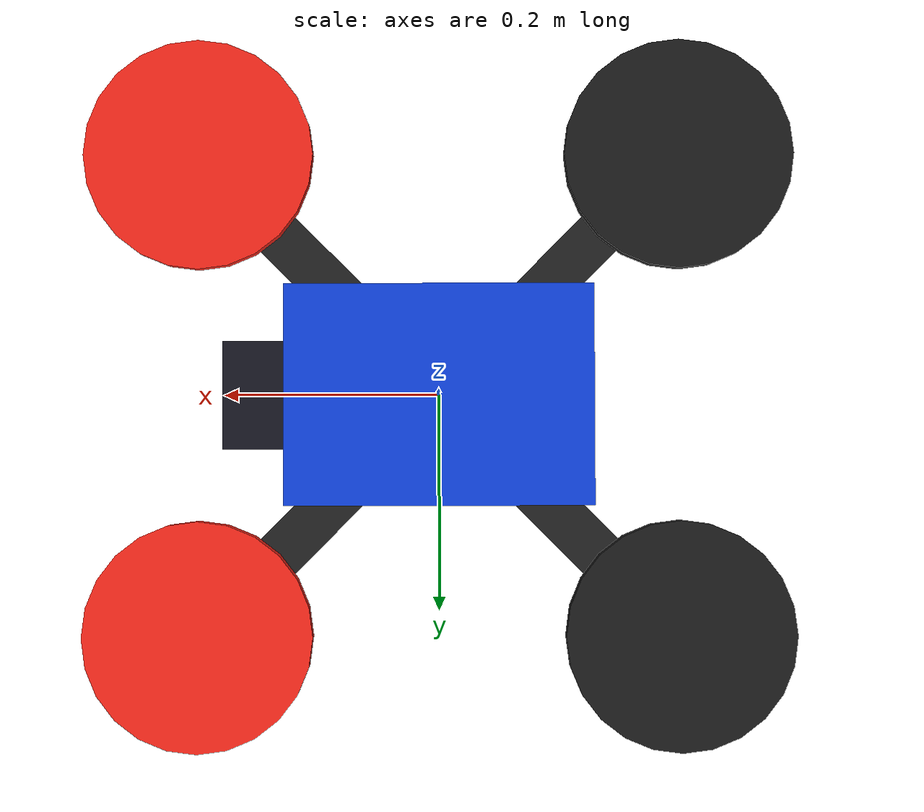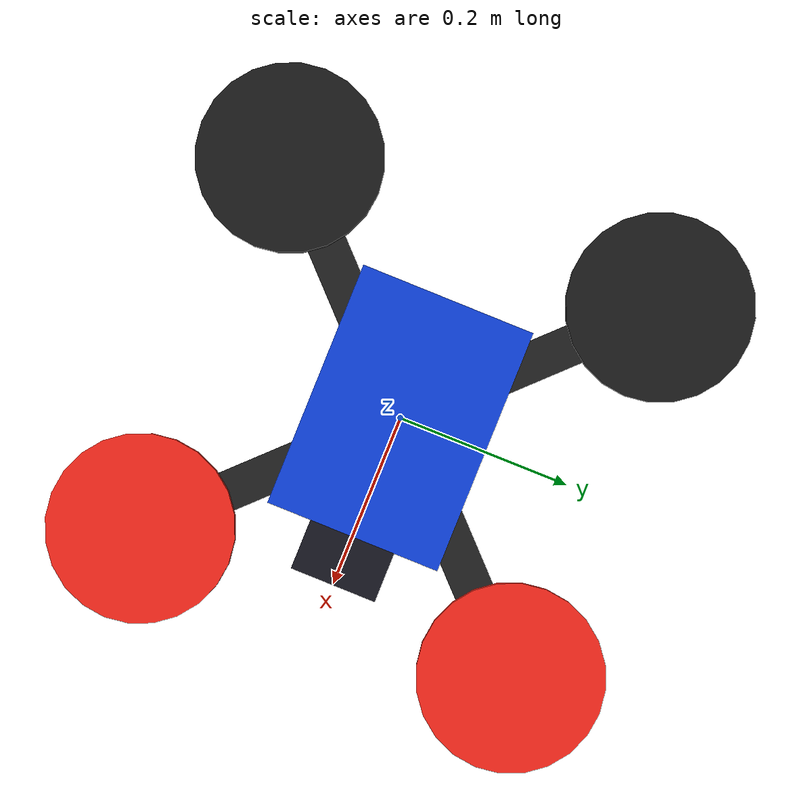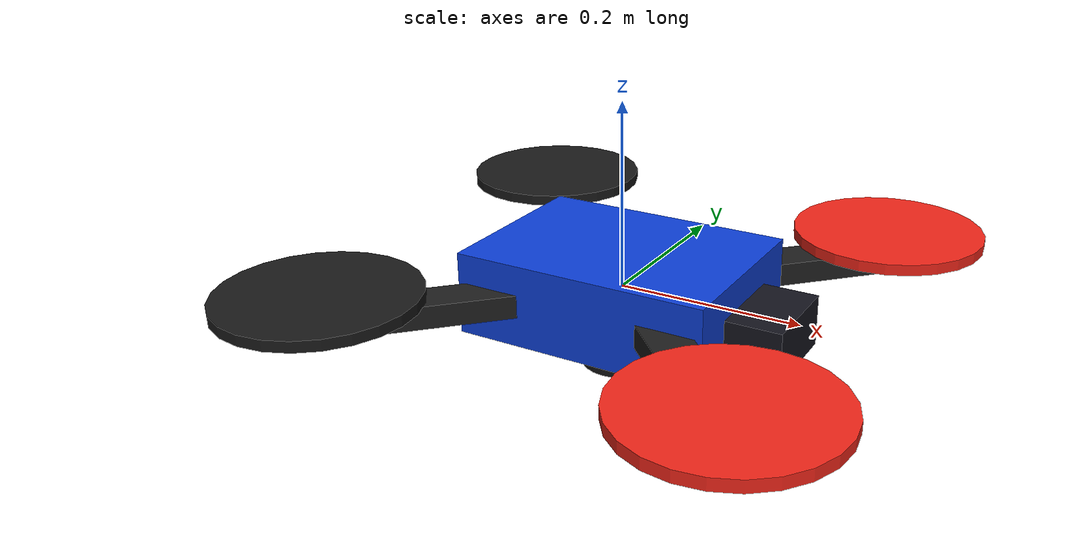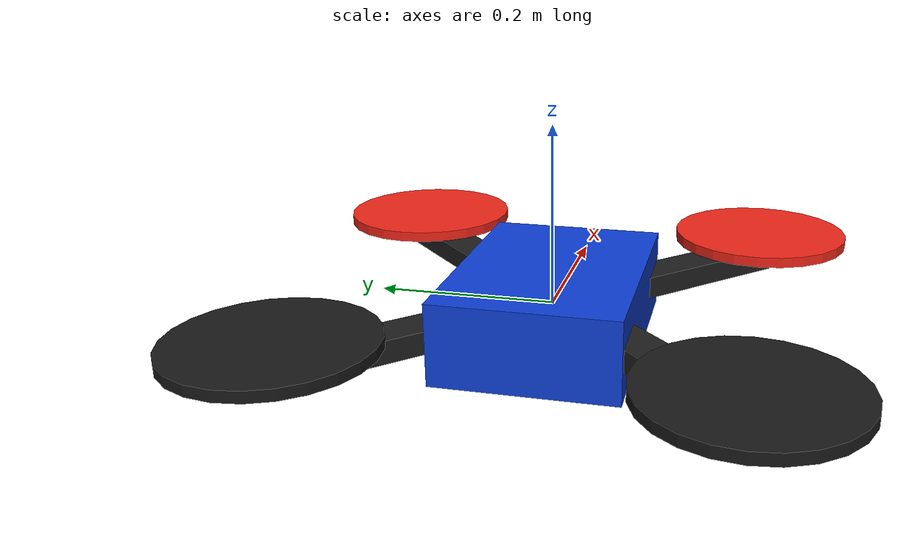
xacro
<?xml version="1.0"?>
<robot name="drone" xmlns:xacro="http://www.ros.org/wiki/xacro">
    <xacro:property name="arm_length" value="0.62" />
    <xacro:property name="arm_width" value="0.045" />
    <xacro:property name="arm_height" value="0.025" />
    <xacro:property name="rotor_radius" value="0.105" />

    <!-- 水平视场：640 / (2*tan(HFOV/2)) = 381.36，与算法侧写死的 fx 对齐 -->
    <xacro:property name="camera_hfov" value="1.3962634" />
    <xacro:property name="camera_width" value="640" />
    <xacro:property name="camera_height" value="480" />

    <link name="robot1/base_link">
        <visual name="body">
            <geometry><box size="0.28 0.20 0.09" /></geometry>
            <material name="drone_blue"><color rgba="0.05 0.25 0.85 1" /></material>
        </visual>
        <visual name="arm_x">
            <origin rpy="0 0 0.7854" />
            <geometry><box size="${arm_length} ${arm_width} ${arm_height}" /></geometry>
            <material name="arm_dark"><color rgba="0.12 0.12 0.12 1" /></material>
        </visual>
        <visual name="arm_y">
            <origin rpy="0 0 -0.7854" />
            <geometry><box size="${arm_length} ${arm_width} ${arm_height}" /></geometry>
            <material name="arm_dark" />
        </visual>
        <!-- 3D雷达安装座：连接无人机机身与下置雷达 -->
        <visual name="drone_lidar_mount">
            <origin xyz="0 0 -0.0475" />
            <geometry><cylinder radius="0.022" length="0.025" /></geometry>
            <material name="drone_lidar_mount_color"><color rgba="0.25 0.25 0.28 1" /></material>
        </visual>
        <collision>
            <geometry><box size="0.28 0.20 0.09" /></geometry>
        </collision>
        <inertial>
            <mass value="1.2" />
            <inertia ixx="0.018" ixy="0" ixz="0" iyy="0.024" iyz="0" izz="0.032" />
        </inertial>
    </link>

    <xacro:macro name="rotor" params="name x y color">
        <link name="${name}">
            <visual>
                <geometry><cylinder radius="${rotor_radius}" length="0.012" /></geometry>
                <material name="${name}_color"><color rgba="${color}" /></material>
            </visual>
            <collision>
                <geometry><cylinder radius="${rotor_radius}" length="0.012" /></geometry>
            </collision>
            <inertial>
                <mass value="0.025" />
                <inertia ixx="0.00014" ixy="0" ixz="0" iyy="0.00014" iyz="0" izz="0.00028" />
            </inertial>
        </link>
        <joint name="${name}_joint" type="fixed">
            <parent link="robot1/base_link" />
            <child link="${name}" />
            <origin xyz="${x} ${y} 0.025" />
        </joint>
        <gazebo reference="${name}">
            <material>Gazebo/Black</material>
            <gravity>false</gravity>
        </gazebo>
    </xacro:macro>

    <xacro:rotor name="front_left_rotor"  x="0.22"  y="0.22"  color="0.95 0.15 0.10 1" />
    <xacro:rotor name="front_right_rotor" x="0.22"  y="-0.22" color="0.95 0.15 0.10 1" />
    <xacro:rotor name="rear_left_rotor"   x="-0.22" y="0.22"  color="0.10 0.10 0.10 1" />
    <xacro:rotor name="rear_right_rotor"  x="-0.22" y="-0.22" color="0.10 0.10 0.10 1" />

    <!-- ============ 3D 雷达：robot1/lidar_link，下挂 0.07 m ============ -->
    <link name="robot1/lidar_link">
        <visual>
            <geometry><cylinder radius="0.045" length="0.035" /></geometry>
            <material name="drone_laser_color"><color rgba="0.08 0.08 0.08 1" /></material>
        </visual>
        <collision>
            <geometry><cylinder radius="0.045" length="0.035" /></geometry>
        </collision>
        <inertial>
            <mass value="0.08" />
            <inertia ixx="0.00005" ixy="0" ixz="0" iyy="0.00005" iyz="0" izz="0.00008" />
        </inertial>
    </link>
    <joint name="drone_laser_joint" type="fixed">
        <parent link="robot1/base_link" />
        <child link="robot1/lidar_link" />
        <origin xyz="0 0 -0.07" />
    </joint>

    <!-- ============ RGB-D 相机：robot1/camera_link，前伸 0.17 m ============ -->
    <link name="robot1/camera_link">
        <visual>
            <geometry><box size="0.06 0.10 0.055" /></geometry>
            <material name="drone_camera_color"><color rgba="0.08 0.08 0.12 1" /></material>
        </visual>
        <collision><geometry><box size="0.06 0.10 0.055" /></geometry></collision>
        <inertial>
            <mass value="0.15" />
            <inertia ixx="0.00016" ixy="0" ixz="0" iyy="0.00008" iyz="0" izz="0.00018" />
        </inertial>
    </link>
    <joint name="drone_rgbd_joint" type="fixed">
        <parent link="robot1/base_link" />
        <child link="robot1/camera_link" />
        <origin xyz="0.17 0 -0.015" />
    </joint>

    <!-- 光学系：z 轴朝前、x 朝右、y 朝下（REP 103），与车侧 camera_optical_frame 同一套 rpy -->
    <link name="robot1/camera_color_optical_frame" />
    <joint name="drone_camera_optical_joint" type="fixed">
        <parent link="robot1/camera_link" />
        <child link="robot1/camera_color_optical_frame" />
        <origin xyz="0 0 0" rpy="-1.57079632679 0 -1.57079632679" />
    </joint>

    <!-- ============ IMU：robot1/imu_link，与机体重心重合 ============ -->
    <link name="robot1/imu_link">
        <inertial>
            <mass value="0.01" />
            <inertia ixx="0.000001" ixy="0" ixz="0" iyy="0.000001" iyz="0" izz="0.000001" />
        </inertial>
    </link>
    <joint name="drone_imu_joint" type="fixed">
        <parent link="robot1/base_link" />
        <child link="robot1/imu_link" />
        <origin xyz="0 0 0" />
    </joint>

    <gazebo reference="robot1/base_link">
        <material>Gazebo/Blue</material>
        <gravity>false</gravity>
    </gazebo>

    <!-- ============================ 3D 雷达 ============================ -->
    <!-- block_laser 只能输出 sensor_msgs/PointCloud(v1)，由 bridge 转为机体系 PointCloud2；
         该仿真源不提供 ring/time，完整 Faster-LIO 原始输入仍需单独验证。 -->
    <gazebo reference="robot1/lidar_link">
        <material>Gazebo/Black</material>
        <gravity>false</gravity>
        <sensor name="drone_3d_laser" type="ray">
            <pose>0 0 0 0 0 0</pose>
            <always_on>true</always_on>
            <visualize>true</visualize>
            <update_rate>15</update_rate>
            <ray>
                <scan>
                    <horizontal>
                        <samples>720</samples>
                        <resolution>1</resolution>
                        <min_angle>-3.14159</min_angle>
                        <max_angle>3.14159</max_angle>
                    </horizontal>
                    <vertical>
                        <samples>16</samples>
                        <resolution>1</resolution>
                        <min_angle>-0.261799</min_angle>
                        <max_angle>0.261799</max_angle>
                    </vertical>
                </scan>
                <range>
                    <min>0.001</min>
                    <max>20.0</max>
                    <resolution>0.01</resolution>
                </range>
                <noise><type>gaussian</type><mean>0</mean><stddev>0.01</stddev></noise>
            </ray>
            <plugin name="drone_3d_laser_controller" filename="libgazebo_ros_block_laser.so">
                <topicName>/robot1/lidar/points_v1</topicName>
                <frameName>robot1/lidar_link</frameName>
                <gaussianNoise>0.01</gaussianNoise>
            </plugin>
        </sensor>
    </gazebo>

    <!-- ============================ RGB-D 相机 ============================ -->
    <gazebo reference="robot1/camera_link">
        <material>Gazebo/Blue</material>
        <sensor type="depth" name="drone_rgbd_sensor">
            <pose>0 0 0 0 0 0</pose>
            <always_on>true</always_on>
            <visualize>false</visualize>
            <update_rate>10.0</update_rate>
            <camera>
                <horizontal_fov>${camera_hfov}</horizontal_fov>
                <image>
                    <width>${camera_width}</width>
                    <height>${camera_height}</height>
                    <format>R8G8B8</format>
                </image>
                <clip>
                    <near>0.02</near>
                    <far>300</far>
                </clip>
                <noise>
                    <type>gaussian</type>
                    <mean>0.0</mean>
                    <stddev>0.007</stddev>
                </noise>
            </camera>
            <plugin name="drone_rgbd_controller" filename="libgazebo_ros_safe_rgbd.so">
                <robotNamespace>/robot1</robotNamespace>
                <cameraName>/robot1/camera</cameraName>
                <imageTopicName>color/image_raw</imageTopicName>
                <cameraInfoTopicName>color/camera_info</cameraInfoTopicName>
                <depthImageTopicName>aligned_depth_to_color/image_raw</depthImageTopicName>
                <depthImageCameraInfoTopicName>depth/camera_info</depthImageCameraInfoTopicName>
                <pointCloudTopicName>depth/points</pointCloudTopicName>
                <frameName>robot1/camera_color_optical_frame</frameName>
                <pointCloudCutoff>0.08</pointCloudCutoff>
                <pointCloudCutoffMax>10.0</pointCloudCutoffMax>
            </plugin>
        </sensor>
    </gazebo>

    <!-- ============================ IMU ============================ -->
    <!-- Both the Gazebo sensor and the ROS plugin need an explicit rate.  The
         plugin throttles publication with updateRateHZ. -->
    <gazebo reference="robot1/imu_link">
        <sensor name="drone_imu" type="imu">
            <always_on>true</always_on>
            <visualize>false</visualize>
            <update_rate>400</update_rate>
            <imu>
                <angular_velocity>
                    <x><noise type="gaussian"><mean>0.0</mean><stddev>0.0002</stddev></noise></x>
                    <y><noise type="gaussian"><mean>0.0</mean><stddev>0.0002</stddev></noise></y>
                    <z><noise type="gaussian"><mean>0.0</mean><stddev>0.0002</stddev></noise></z>
                </angular_velocity>
                <linear_acceleration>
                    <x><noise type="gaussian"><mean>0.0</mean><stddev>0.0017</stddev></noise></x>
                    <y><noise type="gaussian"><mean>0.0</mean><stddev>0.0017</stddev></noise></y>
                    <z><noise type="gaussian"><mean>0.0</mean><stddev>0.0017</stddev></noise></z>
                </linear_acceleration>
            </imu>
            <plugin name="drone_imu_controller" filename="libgazebo_ros_imu_sensor.so">
                <robotNamespace>/robot1</robotNamespace>
                <topicName>imu/data</topicName>
                <frameName>robot1/imu_link</frameName>
                <updateRateHZ>400.0</updateRateHZ>
                <initialOrientationAsReference>false</initialOrientationAsReference>
            </plugin>
        </sensor>
    </gazebo>

    <!-- Movement is handled by drone_cmd_vel_controller.py.  Keeping one
         controller avoids the planar plugin's second odom -> base TF. -->

    <!-- ==================== 里程计（6DoF，p3d） ==================== -->
    <!-- p3d 的 frameName 必须是 Gazebo 中存在的实体；以 world 取 6DoF 位姿，
         再由 drone_odom_tf.py 将消息规范到 robot1/odom 并发布对应 TF。 -->
    <gazebo>
        <plugin name="drone_p3d_odometry" filename="libgazebo_ros_p3d.so">
            <robotNamespace>/robot1</robotNamespace>
            <bodyName>robot1/base_link</bodyName>
            <frameName>world</frameName>
            <topicName>odom_raw</topicName>
            <updateRateHZ>50.0</updateRateHZ>
            <updateRate>50.0</updateRate>
            <gaussianNoise>0.0</gaussianNoise>
            <xyzOffset>0 0 0</xyzOffset>
            <rpyOffset>0 0 0</rpyOffset>
        </plugin>
    </gazebo>
</robot>
